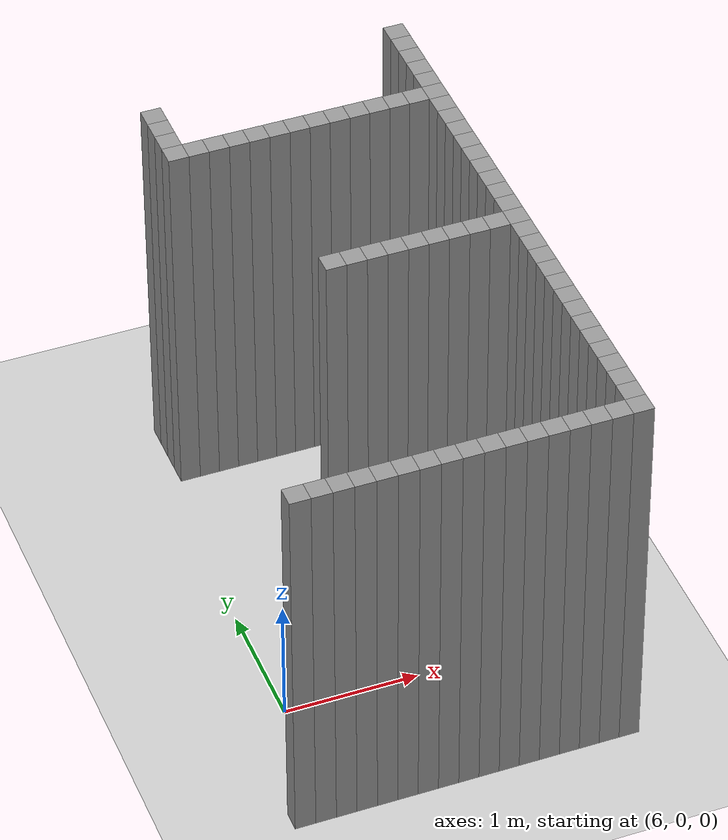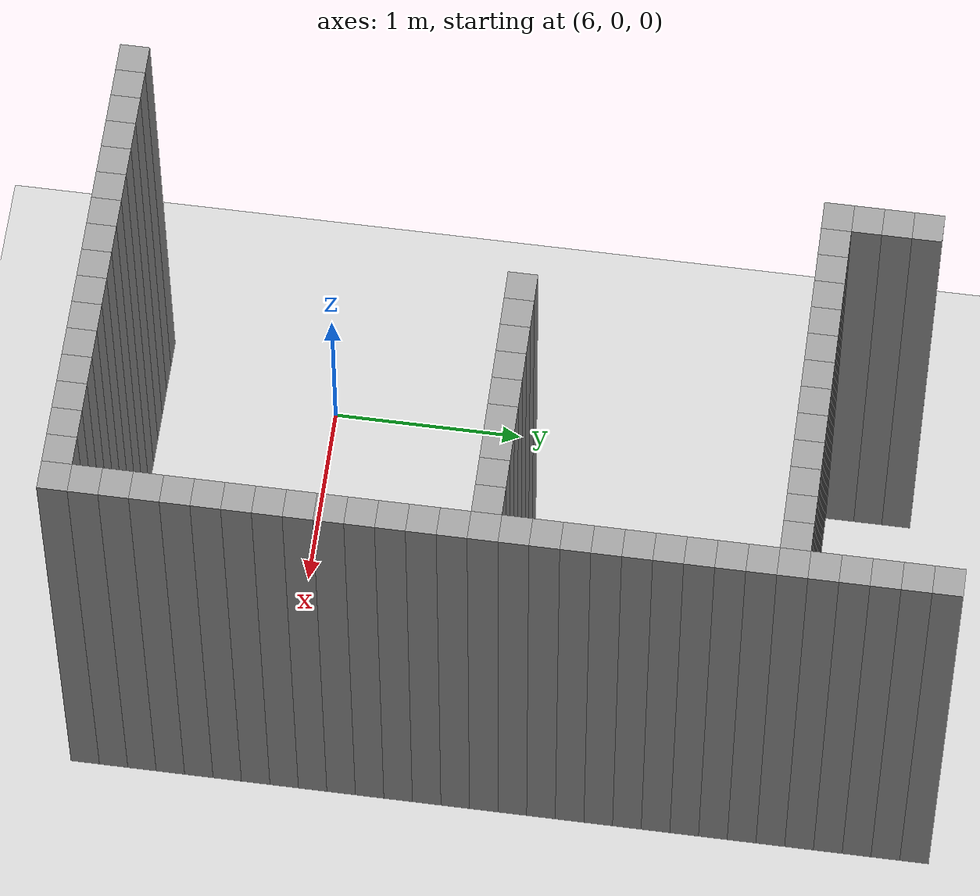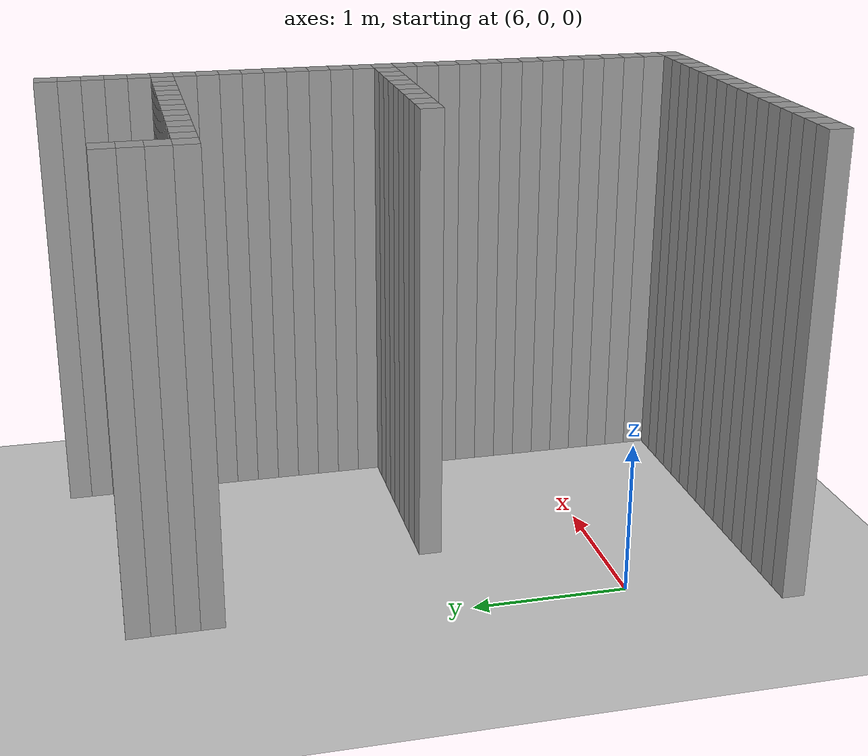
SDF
<sdf version="1.7">
 <world name="default">
  <model name="ground_plane">
   <static>1</static>
   <link name="link">
    <collision name="collision">
     <geometry><plane><normal>0 0 1</normal><size>100 100</size></plane></geometry>
     <surface>
      <contact><collide_bitmask>65535</collide_bitmask></contact>
      <friction><ode><mu>100</mu><mu2>50</mu2></ode></friction>
     </surface>
    </collision>
    <visual name="visual">
     <cast_shadows>0</cast_shadows>
     <geometry><plane><normal>0 0 1</normal><size>100 100</size></plane></geometry>
     <material>
      <script><uri>file://media/materials/scripts/gazebo.material</uri><name>Gazebo/Grey</name></script>
     </material>
    </visual>
   </link>
  </model>
  <model name="image45001">
   <pose>-1 -1 0 0 -0 0</pose>
   <link name="Wall_350">
    <collision name="Wall_350_Collision">
     <geometry><box><size>0.15 0.15 3</size></box></geometry>
     <pose>0 0 1.5 0 -0 0</pose>
    </collision>
    <visual name="Wall_350_Visual">
     <pose>0 0 1.5 0 -0 0</pose>
     <geometry><box><size>0.15 0.15 3</size></box></geometry>
     <material>
      <script><uri>file://media/materials/scripts/gazebo.material</uri><name>Gazebo/Grey</name></script>
      <ambient>1 1 1 1</ambient>
     </material>
     <meta><layer>0</layer></meta>
    </visual>
    <pose>6.75 0.0 0 0 -0 0</pose>
   </link>
   <link name="Wall_353">
    <collision name="Wall_353_Collision">
     <geometry><box><size>0.15 0.15 3</size></box></geometry>
     <pose>0 0 1.5 0 -0 0</pose>
    </collision>
    <visual name="Wall_353_Visual">
     <pose>0 0 1.5 0 -0 0</pose>
     <geometry><box><size>0.15 0.15 3</size></box></geometry>
     <material>
      <script><uri>file://media/materials/scripts/gazebo.material</uri><name>Gazebo/Grey</name></script>
      <ambient>1 1 1 1</ambient>
     </material>
     <meta><layer>0</layer></meta>
    </visual>
    <pose>6.8999999999999995 0.0 0 0 -0 0</pose>
   </link>
   <link name="Wall_365">
    <collision name="Wall_365_Collision">
     <geometry><box><size>0.15 0.15 3</size></box></geometry>
     <pose>0 0 1.5 0 -0 0</pose>
    </collision>
    <visual name="Wall_365_Visual">
     <pose>0 0 1.5 0 -0 0</pose>
     <geometry><box><size>0.15 0.15 3</size></box></geometry>
     <material>
      <script><uri>file://media/materials/scripts/gazebo.material</uri><name>Gazebo/Grey</name></script>
      <ambient>1 1 1 1</ambient>
     </material>
     <meta><layer>0</layer></meta>
    </visual>
    <pose>7.05 0.0 0 0 -0 0</pose>
   </link>
   <link name="Wall_368">
    <collision name="Wall_368_Collision">
     <geometry><box><size>0.15 0.15 3</size></box></geometry>
     <pose>0 0 1.5 0 -0 0</pose>
    </collision>
    <visual name="Wall_368_Visual">
     <pose>0 0 1.5 0 -0 0</pose>
     <geometry><box><size>0.15 0.15 3</size></box></geometry>
     <material>
      <script><uri>file://media/materials/scripts/gazebo.material</uri><name>Gazebo/Grey</name></script>
      <ambient>1 1 1 1</ambient>
     </material>
     <meta><layer>0</layer></meta>
    </visual>
    <pose>7.199999999999999 0.0 0 0 -0 0</pose>
   </link>
   <link name="Wall_369">
    <collision name="Wall_369_Collision">
     <geometry><box><size>0.15 0.15 3</size></box></geometry>
     <pose>0 0 1.5 0 -0 0</pose>
    </collision>
    <visual name="Wall_369_Visual">
     <pose>0 0 1.5 0 -0 0</pose>
     <geometry><box><size>0.15 0.15 3</size></box></geometry>
     <material>
      <script><uri>file://media/materials/scripts/gazebo.material</uri><name>Gazebo/Grey</name></script>
      <ambient>1 1 1 1</ambient>
     </material>
     <meta><layer>0</layer></meta>
    </visual>
    <pose>7.199999999999999 3.5999999999999996 0 0 -0 0</pose>
   </link>
   <link name="Wall_370">
    <collision name="Wall_370_Collision">
     <geometry><box><size>0.15 0.15 3</size></box></geometry>
     <pose>0 0 1.5 0 -0 0</pose>
    </collision>
    <visual name="Wall_370_Visual">
     <pose>0 0 1.5 0 -0 0</pose>
     <geometry><box><size>0.15 0.15 3</size></box></geometry>
     <material>
      <script><uri>file://media/materials/scripts/gazebo.material</uri><name>Gazebo/Grey</name></script>
      <ambient>1 1 1 1</ambient>
     </material>
     <meta><layer>0</layer></meta>
    </visual>
    <pose>7.199999999999999 3.75 0 0 -0 0</pose>
   </link>
   <link name="Wall_371">
    <collision name="Wall_371_Collision">
     <geometry><box><size>0.15 0.15 3</size></box></geometry>
     <pose>0 0 1.5 0 -0 0</pose>
    </collision>
    <visual name="Wall_371_Visual">
     <pose>0 0 1.5 0 -0 0</pose>
     <geometry><box><size>0.15 0.15 3</size></box></geometry>
     <material>
      <script><uri>file://media/materials/scripts/gazebo.material</uri><name>Gazebo/Grey</name></script>
      <ambient>1 1 1 1</ambient>
     </material>
     <meta><layer>0</layer></meta>
    </visual>
    <pose>7.199999999999999 3.9 0 0 -0 0</pose>
   </link>
   <link name="Wall_372">
    <collision name="Wall_372_Collision">
     <geometry><box><size>0.15 0.15 3</size></box></geometry>
     <pose>0 0 1.5 0 -0 0</pose>
    </collision>
    <visual name="Wall_372_Visual">
     <pose>0 0 1.5 0 -0 0</pose>
     <geometry><box><size>0.15 0.15 3</size></box></geometry>
     <material>
      <script><uri>file://media/materials/scripts/gazebo.material</uri><name>Gazebo/Grey</name></script>
      <ambient>1 1 1 1</ambient>
     </material>
     <meta><layer>0</layer></meta>
    </visual>
    <pose>7.199999999999999 4.05 0 0 -0 0</pose>
   </link>
   <link name="Wall_381">
    <collision name="Wall_381_Collision">
     <geometry><box><size>0.15 0.15 3</size></box></geometry>
     <pose>0 0 1.5 0 -0 0</pose>
    </collision>
    <visual name="Wall_381_Visual">
     <pose>0 0 1.5 0 -0 0</pose>
     <geometry><box><size>0.15 0.15 3</size></box></geometry>
     <material>
      <script><uri>file://media/materials/scripts/gazebo.material</uri><name>Gazebo/Grey</name></script>
      <ambient>1 1 1 1</ambient>
     </material>
     <meta><layer>0</layer></meta>
    </visual>
    <pose>7.35 0.0 0 0 -0 0</pose>
   </link>
   <link name="Wall_382">
    <collision name="Wall_382_Collision">
     <geometry><box><size>0.15 0.15 3</size></box></geometry>
     <pose>0 0 1.5 0 -0 0</pose>
    </collision>
    <visual name="Wall_382_Visual">
     <pose>0 0 1.5 0 -0 0</pose>
     <geometry><box><size>0.15 0.15 3</size></box></geometry>
     <material>
      <script><uri>file://media/materials/scripts/gazebo.material</uri><name>Gazebo/Grey</name></script>
      <ambient>1 1 1 1</ambient>
     </material>
     <meta><layer>0</layer></meta>
    </visual>
    <pose>7.35 3.5999999999999996 0 0 -0 0</pose>
   </link>
   <link name="Wall_385">
    <collision name="Wall_385_Collision">
     <geometry><box><size>0.15 0.15 3</size></box></geometry>
     <pose>0 0 1.5 0 -0 0</pose>
    </collision>
    <visual name="Wall_385_Visual">
     <pose>0 0 1.5 0 -0 0</pose>
     <geometry><box><size>0.15 0.15 3</size></box></geometry>
     <material>
      <script><uri>file://media/materials/scripts/gazebo.material</uri><name>Gazebo/Grey</name></script>
      <ambient>1 1 1 1</ambient>
     </material>
     <meta><layer>0</layer></meta>
    </visual>
    <pose>7.5 0.0 0 0 -0 0</pose>
   </link>
   <link name="Wall_386">
    <collision name="Wall_386_Collision">
     <geometry><box><size>0.15 0.15 3</size></box></geometry>
     <pose>0 0 1.5 0 -0 0</pose>
    </collision>
    <visual name="Wall_386_Visual">
     <pose>0 0 1.5 0 -0 0</pose>
     <geometry><box><size>0.15 0.15 3</size></box></geometry>
     <material>
      <script><uri>file://media/materials/scripts/gazebo.material</uri><name>Gazebo/Grey</name></script>
      <ambient>1 1 1 1</ambient>
     </material>
     <meta><layer>0</layer></meta>
    </visual>
    <pose>7.5 3.5999999999999996 0 0 -0 0</pose>
   </link>
   <link name="Wall_389">
    <collision name="Wall_389_Collision">
     <geometry><box><size>0.15 0.15 3</size></box></geometry>
     <pose>0 0 1.5 0 -0 0</pose>
    </collision>
    <visual name="Wall_389_Visual">
     <pose>0 0 1.5 0 -0 0</pose>
     <geometry><box><size>0.15 0.15 3</size></box></geometry>
     <material>
      <script><uri>file://media/materials/scripts/gazebo.material</uri><name>Gazebo/Grey</name></script>
      <ambient>1 1 1 1</ambient>
     </material>
     <meta><layer>0</layer></meta>
    </visual>
    <pose>7.6499999999999995 0.0 0 0 -0 0</pose>
   </link>
   <link name="Wall_390">
    <collision name="Wall_390_Collision">
     <geometry><box><size>0.15 0.15 3</size></box></geometry>
     <pose>0 0 1.5 0 -0 0</pose>
    </collision>
    <visual name="Wall_390_Visual">
     <pose>0 0 1.5 0 -0 0</pose>
     <geometry><box><size>0.15 0.15 3</size></box></geometry>
     <material>
      <script><uri>file://media/materials/scripts/gazebo.material</uri><name>Gazebo/Grey</name></script>
      <ambient>1 1 1 1</ambient>
     </material>
     <meta><layer>0</layer></meta>
    </visual>
    <pose>7.6499999999999995 3.5999999999999996 0 0 -0 0</pose>
   </link>
   <link name="Wall_393">
    <collision name="Wall_393_Collision">
     <geometry><box><size>0.15 0.15 3</size></box></geometry>
     <pose>0 0 1.5 0 -0 0</pose>
    </collision>
    <visual name="Wall_393_Visual">
     <pose>0 0 1.5 0 -0 0</pose>
     <geometry><box><size>0.15 0.15 3</size></box></geometry>
     <material>
      <script><uri>file://media/materials/scripts/gazebo.material</uri><name>Gazebo/Grey</name></script>
      <ambient>1 1 1 1</ambient>
     </material>
     <meta><layer>0</layer></meta>
    </visual>
    <pose>7.8 0.0 0 0 -0 0</pose>
   </link>
   <link name="Wall_394">
    <collision name="Wall_394_Collision">
     <geometry><box><size>0.15 0.15 3</size></box></geometry>
     <pose>0 0 1.5 0 -0 0</pose>
    </collision>
    <visual name="Wall_394_Visual">
     <pose>0 0 1.5 0 -0 0</pose>
     <geometry><box><size>0.15 0.15 3</size></box></geometry>
     <material>
      <script><uri>file://media/materials/scripts/gazebo.material</uri><name>Gazebo/Grey</name></script>
      <ambient>1 1 1 1</ambient>
     </material>
     <meta><layer>0</layer></meta>
    </visual>
    <pose>7.8 2.1 0 0 -0 0</pose>
   </link>
   <link name="Wall_395">
    <collision name="Wall_395_Collision">
     <geometry><box><size>0.15 0.15 3</size></box></geometry>
     <pose>0 0 1.5 0 -0 0</pose>
    </collision>
    <visual name="Wall_395_Visual">
     <pose>0 0 1.5 0 -0 0</pose>
     <geometry><box><size>0.15 0.15 3</size></box></geometry>
     <material>
      <script><uri>file://media/materials/scripts/gazebo.material</uri><name>Gazebo/Grey</name></script>
      <ambient>1 1 1 1</ambient>
     </material>
     <meta><layer>0</layer></meta>
    </visual>
    <pose>7.8 3.5999999999999996 0 0 -0 0</pose>
   </link>
   <link name="Wall_398">
    <collision name="Wall_398_Collision">
     <geometry><box><size>0.15 0.15 3</size></box></geometry>
     <pose>0 0 1.5 0 -0 0</pose>
    </collision>
    <visual name="Wall_398_Visual">
     <pose>0 0 1.5 0 -0 0</pose>
     <geometry><box><size>0.15 0.15 3</size></box></geometry>
     <material>
      <script><uri>file://media/materials/scripts/gazebo.material</uri><name>Gazebo/Grey</name></script>
      <ambient>1 1 1 1</ambient>
     </material>
     <meta><layer>0</layer></meta>
    </visual>
    <pose>7.949999999999999 0.0 0 0 -0 0</pose>
   </link>
   <link name="Wall_399">
    <collision name="Wall_399_Collision">
     <geometry><box><size>0.15 0.15 3</size></box></geometry>
     <pose>0 0 1.5 0 -0 0</pose>
    </collision>
    <visual name="Wall_399_Visual">
     <pose>0 0 1.5 0 -0 0</pose>
     <geometry><box><size>0.15 0.15 3</size></box></geometry>
     <material>
      <script><uri>file://media/materials/scripts/gazebo.material</uri><name>Gazebo/Grey</name></script>
      <ambient>1 1 1 1</ambient>
     </material>
     <meta><layer>0</layer></meta>
    </visual>
    <pose>7.949999999999999 2.1 0 0 -0 0</pose>
   </link>
   <link name="Wall_400">
    <collision name="Wall_400_Collision">
     <geometry><box><size>0.15 0.15 3</size></box></geometry>
     <pose>0 0 1.5 0 -0 0</pose>
    </collision>
    <visual name="Wall_400_Visual">
     <pose>0 0 1.5 0 -0 0</pose>
     <geometry><box><size>0.15 0.15 3</size></box></geometry>
     <material>
      <script><uri>file://media/materials/scripts/gazebo.material</uri><name>Gazebo/Grey</name></script>
      <ambient>1 1 1 1</ambient>
     </material>
     <meta><layer>0</layer></meta>
    </visual>
    <pose>7.949999999999999 3.5999999999999996 0 0 -0 0</pose>
   </link>
   <link name="Wall_403">
    <collision name="Wall_403_Collision">
     <geometry><box><size>0.15 0.15 3</size></box></geometry>
     <pose>0 0 1.5 0 -0 0</pose>
    </collision>
    <visual name="Wall_403_Visual">
     <pose>0 0 1.5 0 -0 0</pose>
     <geometry><box><size>0.15 0.15 3</size></box></geometry>
     <material>
      <script><uri>file://media/materials/scripts/gazebo.material</uri><name>Gazebo/Grey</name></script>
      <ambient>1 1 1 1</ambient>
     </material>
     <meta><layer>0</layer></meta>
    </visual>
    <pose>8.1 0.0 0 0 -0 0</pose>
   </link>
   <link name="Wall_404">
    <collision name="Wall_404_Collision">
     <geometry><box><size>0.15 0.15 3</size></box></geometry>
     <pose>0 0 1.5 0 -0 0</pose>
    </collision>
    <visual name="Wall_404_Visual">
     <pose>0 0 1.5 0 -0 0</pose>
     <geometry><box><size>0.15 0.15 3</size></box></geometry>
     <material>
      <script><uri>file://media/materials/scripts/gazebo.material</uri><name>Gazebo/Grey</name></script>
      <ambient>1 1 1 1</ambient>
     </material>
     <meta><layer>0</layer></meta>
    </visual>
    <pose>8.1 2.1 0 0 -0 0</pose>
   </link>
   <link name="Wall_405">
    <collision name="Wall_405_Collision">
     <geometry><box><size>0.15 0.15 3</size></box></geometry>
     <pose>0 0 1.5 0 -0 0</pose>
    </collision>
    <visual name="Wall_405_Visual">
     <pose>0 0 1.5 0 -0 0</pose>
     <geometry><box><size>0.15 0.15 3</size></box></geometry>
     <material>
      <script><uri>file://media/materials/scripts/gazebo.material</uri><name>Gazebo/Grey</name></script>
      <ambient>1 1 1 1</ambient>
     </material>
     <meta><layer>0</layer></meta>
    </visual>
    <pose>8.1 3.5999999999999996 0 0 -0 0</pose>
   </link>
   <link name="Wall_408">
    <collision name="Wall_408_Collision">
     <geometry><box><size>0.15 0.15 3</size></box></geometry>
     <pose>0 0 1.5 0 -0 0</pose>
    </collision>
    <visual name="Wall_408_Visual">
     <pose>0 0 1.5 0 -0 0</pose>
     <geometry><box><size>0.15 0.15 3</size></box></geometry>
     <material>
      <script><uri>file://media/materials/scripts/gazebo.material</uri><name>Gazebo/Grey</name></script>
      <ambient>1 1 1 1</ambient>
     </material>
     <meta><layer>0</layer></meta>
    </visual>
    <pose>8.25 0.0 0 0 -0 0</pose>
   </link>
   <link name="Wall_409">
    <collision name="Wall_409_Collision">
     <geometry><box><size>0.15 0.15 3</size></box></geometry>
     <pose>0 0 1.5 0 -0 0</pose>
    </collision>
    <visual name="Wall_409_Visual">
     <pose>0 0 1.5 0 -0 0</pose>
     <geometry><box><size>0.15 0.15 3</size></box></geometry>
     <material>
      <script><uri>file://media/materials/scripts/gazebo.material</uri><name>Gazebo/Grey</name></script>
      <ambient>1 1 1 1</ambient>
     </material>
     <meta><layer>0</layer></meta>
    </visual>
    <pose>8.25 2.1 0 0 -0 0</pose>
   </link>
   <link name="Wall_410">
    <collision name="Wall_410_Collision">
     <geometry><box><size>0.15 0.15 3</size></box></geometry>
     <pose>0 0 1.5 0 -0 0</pose>
    </collision>
    <visual name="Wall_410_Visual">
     <pose>0 0 1.5 0 -0 0</pose>
     <geometry><box><size>0.15 0.15 3</size></box></geometry>
     <material>
      <script><uri>file://media/materials/scripts/gazebo.material</uri><name>Gazebo/Grey</name></script>
      <ambient>1 1 1 1</ambient>
     </material>
     <meta><layer>0</layer></meta>
    </visual>
    <pose>8.25 3.5999999999999996 0 0 -0 0</pose>
   </link>
   <link name="Wall_413">
    <collision name="Wall_413_Collision">
     <geometry><box><size>0.15 0.15 3</size></box></geometry>
     <pose>0 0 1.5 0 -0 0</pose>
    </collision>
    <visual name="Wall_413_Visual">
     <pose>0 0 1.5 0 -0 0</pose>
     <geometry><box><size>0.15 0.15 3</size></box></geometry>
     <material>
      <script><uri>file://media/materials/scripts/gazebo.material</uri><name>Gazebo/Grey</name></script>
      <ambient>1 1 1 1</ambient>
     </material>
     <meta><layer>0</layer></meta>
    </visual>
    <pose>8.4 0.0 0 0 -0 0</pose>
   </link>
   <link name="Wall_414">
    <collision name="Wall_414_Collision">
     <geometry><box><size>0.15 0.15 3</size></box></geometry>
     <pose>0 0 1.5 0 -0 0</pose>
    </collision>
    <visual name="Wall_414_Visual">
     <pose>0 0 1.5 0 -0 0</pose>
     <geometry><box><size>0.15 0.15 3</size></box></geometry>
     <material>
      <script><uri>file://media/materials/scripts/gazebo.material</uri><name>Gazebo/Grey</name></script>
      <ambient>1 1 1 1</ambient>
     </material>
     <meta><layer>0</layer></meta>
    </visual>
    <pose>8.4 2.1 0 0 -0 0</pose>
   </link>
   <link name="Wall_415">
    <collision name="Wall_415_Collision">
     <geometry><box><size>0.15 0.15 3</size></box></geometry>
     <pose>0 0 1.5 0 -0 0</pose>
    </collision>
    <visual name="Wall_415_Visual">
     <pose>0 0 1.5 0 -0 0</pose>
     <geometry><box><size>0.15 0.15 3</size></box></geometry>
     <material>
      <script><uri>file://media/materials/scripts/gazebo.material</uri><name>Gazebo/Grey</name></script>
      <ambient>1 1 1 1</ambient>
     </material>
     <meta><layer>0</layer></meta>
    </visual>
    <pose>8.4 3.5999999999999996 0 0 -0 0</pose>
   </link>
   <link name="Wall_418">
    <collision name="Wall_418_Collision">
     <geometry><box><size>0.15 0.15 3</size></box></geometry>
     <pose>0 0 1.5 0 -0 0</pose>
    </collision>
    <visual name="Wall_418_Visual">
     <pose>0 0 1.5 0 -0 0</pose>
     <geometry><box><size>0.15 0.15 3</size></box></geometry>
     <material>
      <script><uri>file://media/materials/scripts/gazebo.material</uri><name>Gazebo/Grey</name></script>
      <ambient>1 1 1 1</ambient>
     </material>
     <meta><layer>0</layer></meta>
    </visual>
    <pose>8.549999999999999 0.0 0 0 -0 0</pose>
   </link>
   <link name="Wall_419">
    <collision name="Wall_419_Collision">
     <geometry><box><size>0.15 0.15 3</size></box></geometry>
     <pose>0 0 1.5 0 -0 0</pose>
    </collision>
    <visual name="Wall_419_Visual">
     <pose>0 0 1.5 0 -0 0</pose>
     <geometry><box><size>0.15 0.15 3</size></box></geometry>
     <material>
      <script><uri>file://media/materials/scripts/gazebo.material</uri><name>Gazebo/Grey</name></script>
      <ambient>1 1 1 1</ambient>
     </material>
     <meta><layer>0</layer></meta>
    </visual>
    <pose>8.549999999999999 2.1 0 0 -0 0</pose>
   </link>
   <link name="Wall_420">
    <collision name="Wall_420_Collision">
     <geometry><box><size>0.15 0.15 3</size></box></geometry>
     <pose>0 0 1.5 0 -0 0</pose>
    </collision>
    <visual name="Wall_420_Visual">
     <pose>0 0 1.5 0 -0 0</pose>
     <geometry><box><size>0.15 0.15 3</size></box></geometry>
     <material>
      <script><uri>file://media/materials/scripts/gazebo.material</uri><name>Gazebo/Grey</name></script>
      <ambient>1 1 1 1</ambient>
     </material>
     <meta><layer>0</layer></meta>
    </visual>
    <pose>8.549999999999999 3.5999999999999996 0 0 -0 0</pose>
   </link>
   <link name="Wall_424">
    <collision name="Wall_424_Collision">
     <geometry><box><size>0.15 0.15 3</size></box></geometry>
     <pose>0 0 1.5 0 -0 0</pose>
    </collision>
    <visual name="Wall_424_Visual">
     <pose>0 0 1.5 0 -0 0</pose>
     <geometry><box><size>0.15 0.15 3</size></box></geometry>
     <material>
      <script><uri>file://media/materials/scripts/gazebo.material</uri><name>Gazebo/Grey</name></script>
      <ambient>1 1 1 1</ambient>
     </material>
     <meta><layer>0</layer></meta>
    </visual>
    <pose>8.7 0.0 0 0 -0 0</pose>
   </link>
   <link name="Wall_425">
    <collision name="Wall_425_Collision">
     <geometry><box><size>0.15 0.15 3</size></box></geometry>
     <pose>0 0 1.5 0 -0 0</pose>
    </collision>
    <visual name="Wall_425_Visual">
     <pose>0 0 1.5 0 -0 0</pose>
     <geometry><box><size>0.15 0.15 3</size></box></geometry>
     <material>
      <script><uri>file://media/materials/scripts/gazebo.material</uri><name>Gazebo/Grey</name></script>
      <ambient>1 1 1 1</ambient>
     </material>
     <meta><layer>0</layer></meta>
    </visual>
    <pose>8.7 2.1 0 0 -0 0</pose>
   </link>
   <link name="Wall_426">
    <collision name="Wall_426_Collision">
     <geometry><box><size>0.15 0.15 3</size></box></geometry>
     <pose>0 0 1.5 0 -0 0</pose>
    </collision>
    <visual name="Wall_426_Visual">
     <pose>0 0 1.5 0 -0 0</pose>
     <geometry><box><size>0.15 0.15 3</size></box></geometry>
     <material>
      <script><uri>file://media/materials/scripts/gazebo.material</uri><name>Gazebo/Grey</name></script>
      <ambient>1 1 1 1</ambient>
     </material>
     <meta><layer>0</layer></meta>
    </visual>
    <pose>8.7 3.5999999999999996 0 0 -0 0</pose>
   </link>
   <link name="Wall_430">
    <collision name="Wall_430_Collision">
     <geometry><box><size>0.15 0.15 3</size></box></geometry>
     <pose>0 0 1.5 0 -0 0</pose>
    </collision>
    <visual name="Wall_430_Visual">
     <pose>0 0 1.5 0 -0 0</pose>
     <geometry><box><size>0.15 0.15 3</size></box></geometry>
     <material>
      <script><uri>file://media/materials/scripts/gazebo.material</uri><name>Gazebo/Grey</name></script>
      <ambient>1 1 1 1</ambient>
     </material>
     <meta><layer>0</layer></meta>
    </visual>
    <pose>8.85 0.0 0 0 -0 0</pose>
   </link>
   <link name="Wall_431">
    <collision name="Wall_431_Collision">
     <geometry><box><size>0.15 0.15 3</size></box></geometry>
     <pose>0 0 1.5 0 -0 0</pose>
    </collision>
    <visual name="Wall_431_Visual">
     <pose>0 0 1.5 0 -0 0</pose>
     <geometry><box><size>0.15 0.15 3</size></box></geometry>
     <material>
      <script><uri>file://media/materials/scripts/gazebo.material</uri><name>Gazebo/Grey</name></script>
      <ambient>1 1 1 1</ambient>
     </material>
     <meta><layer>0</layer></meta>
    </visual>
    <pose>8.85 2.1 0 0 -0 0</pose>
   </link>
   <link name="Wall_432">
    <collision name="Wall_432_Collision">
     <geometry><box><size>0.15 0.15 3</size></box></geometry>
     <pose>0 0 1.5 0 -0 0</pose>
    </collision>
    <visual name="Wall_432_Visual">
     <pose>0 0 1.5 0 -0 0</pose>
     <geometry><box><size>0.15 0.15 3</size></box></geometry>
     <material>
      <script><uri>file://media/materials/scripts/gazebo.material</uri><name>Gazebo/Grey</name></script>
      <ambient>1 1 1 1</ambient>
     </material>
     <meta><layer>0</layer></meta>
    </visual>
    <pose>8.85 3.5999999999999996 0 0 -0 0</pose>
   </link>
   <link name="Wall_436">
    <collision name="Wall_436_Collision">
     <geometry><box><size>0.15 0.15 3</size></box></geometry>
     <pose>0 0 1.5 0 -0 0</pose>
    </collision>
    <visual name="Wall_436_Visual">
     <pose>0 0 1.5 0 -0 0</pose>
     <geometry><box><size>0.15 0.15 3</size></box></geometry>
     <material>
      <script><uri>file://media/materials/scripts/gazebo.material</uri><name>Gazebo/Grey</name></script>
      <ambient>1 1 1 1</ambient>
     </material>
     <meta><layer>0</layer></meta>
    </visual>
    <pose>9.0 0.0 0 0 -0 0</pose>
   </link>
   <link name="Wall_437">
    <collision name="Wall_437_Collision">
     <geometry><box><size>0.15 0.15 3</size></box></geometry>
     <pose>0 0 1.5 0 -0 0</pose>
    </collision>
    <visual name="Wall_437_Visual">
     <pose>0 0 1.5 0 -0 0</pose>
     <geometry><box><size>0.15 0.15 3</size></box></geometry>
     <material>
      <script><uri>file://media/materials/scripts/gazebo.material</uri><name>Gazebo/Grey</name></script>
      <ambient>1 1 1 1</ambient>
     </material>
     <meta><layer>0</layer></meta>
    </visual>
    <pose>9.0 2.1 0 0 -0 0</pose>
   </link>
   <link name="Wall_438">
    <collision name="Wall_438_Collision">
     <geometry><box><size>0.15 0.15 3</size></box></geometry>
     <pose>0 0 1.5 0 -0 0</pose>
    </collision>
    <visual name="Wall_438_Visual">
     <pose>0 0 1.5 0 -0 0</pose>
     <geometry><box><size>0.15 0.15 3</size></box></geometry>
     <material>
      <script><uri>file://media/materials/scripts/gazebo.material</uri><name>Gazebo/Grey</name></script>
      <ambient>1 1 1 1</ambient>
     </material>
     <meta><layer>0</layer></meta>
    </visual>
    <pose>9.0 3.5999999999999996 0 0 -0 0</pose>
   </link>
   <link name="Wall_442">
    <collision name="Wall_442_Collision">
     <geometry><box><size>0.15 0.15 3</size></box></geometry>
     <pose>0 0 1.5 0 -0 0</pose>
    </collision>
    <visual name="Wall_442_Visual">
     <pose>0 0 1.5 0 -0 0</pose>
     <geometry><box><size>0.15 0.15 3</size></box></geometry>
     <material>
      <script><uri>file://media/materials/scripts/gazebo.material</uri><name>Gazebo/Grey</name></script>
      <ambient>1 1 1 1</ambient>
     </material>
     <meta><layer>0</layer></meta>
    </visual>
    <pose>9.15 0.0 0 0 -0 0</pose>
   </link>
   <link name="Wall_443">
    <collision name="Wall_443_Collision">
     <geometry><box><size>0.15 0.15 3</size></box></geometry>
     <pose>0 0 1.5 0 -0 0</pose>
    </collision>
    <visual name="Wall_443_Visual">
     <pose>0 0 1.5 0 -0 0</pose>
     <geometry><box><size>0.15 0.15 3</size></box></geometry>
     <material>
      <script><uri>file://media/materials/scripts/gazebo.material</uri><name>Gazebo/Grey</name></script>
      <ambient>1 1 1 1</ambient>
     </material>
     <meta><layer>0</layer></meta>
    </visual>
    <pose>9.15 0.15 0 0 -0 0</pose>
   </link>
   <link name="Wall_444">
    <collision name="Wall_444_Collision">
     <geometry><box><size>0.15 0.15 3</size></box></geometry>
     <pose>0 0 1.5 0 -0 0</pose>
    </collision>
    <visual name="Wall_444_Visual">
     <pose>0 0 1.5 0 -0 0</pose>
     <geometry><box><size>0.15 0.15 3</size></box></geometry>
     <material>
      <script><uri>file://media/materials/scripts/gazebo.material</uri><name>Gazebo/Grey</name></script>
      <ambient>1 1 1 1</ambient>
     </material>
     <meta><layer>0</layer></meta>
    </visual>
    <pose>9.15 0.3 0 0 -0 0</pose>
   </link>
   <link name="Wall_445">
    <collision name="Wall_445_Collision">
     <geometry><box><size>0.15 0.15 3</size></box></geometry>
     <pose>0 0 1.5 0 -0 0</pose>
    </collision>
    <visual name="Wall_445_Visual">
     <pose>0 0 1.5 0 -0 0</pose>
     <geometry><box><size>0.15 0.15 3</size></box></geometry>
     <material>
      <script><uri>file://media/materials/scripts/gazebo.material</uri><name>Gazebo/Grey</name></script>
      <ambient>1 1 1 1</ambient>
     </material>
     <meta><layer>0</layer></meta>
    </visual>
    <pose>9.15 0.44999999999999996 0 0 -0 0</pose>
   </link>
   <link name="Wall_446">
    <collision name="Wall_446_Collision">
     <geometry><box><size>0.15 0.15 3</size></box></geometry>
     <pose>0 0 1.5 0 -0 0</pose>
    </collision>
    <visual name="Wall_446_Visual">
     <pose>0 0 1.5 0 -0 0</pose>
     <geometry><box><size>0.15 0.15 3</size></box></geometry>
     <material>
      <script><uri>file://media/materials/scripts/gazebo.material</uri><name>Gazebo/Grey</name></script>
      <ambient>1 1 1 1</ambient>
     </material>
     <meta><layer>0</layer></meta>
    </visual>
    <pose>9.15 0.6 0 0 -0 0</pose>
   </link>
   <link name="Wall_447">
    <collision name="Wall_447_Collision">
     <geometry><box><size>0.15 0.15 3</size></box></geometry>
     <pose>0 0 1.5 0 -0 0</pose>
    </collision>
    <visual name="Wall_447_Visual">
     <pose>0 0 1.5 0 -0 0</pose>
     <geometry><box><size>0.15 0.15 3</size></box></geometry>
     <material>
      <script><uri>file://media/materials/scripts/gazebo.material</uri><name>Gazebo/Grey</name></script>
      <ambient>1 1 1 1</ambient>
     </material>
     <meta><layer>0</layer></meta>
    </visual>
    <pose>9.15 0.75 0 0 -0 0</pose>
   </link>
   <link name="Wall_448">
    <collision name="Wall_448_Collision">
     <geometry><box><size>0.15 0.15 3</size></box></geometry>
     <pose>0 0 1.5 0 -0 0</pose>
    </collision>
    <visual name="Wall_448_Visual">
     <pose>0 0 1.5 0 -0 0</pose>
     <geometry><box><size>0.15 0.15 3</size></box></geometry>
     <material>
      <script><uri>file://media/materials/scripts/gazebo.material</uri><name>Gazebo/Grey</name></script>
      <ambient>1 1 1 1</ambient>
     </material>
     <meta><layer>0</layer></meta>
    </visual>
    <pose>9.15 0.8999999999999999 0 0 -0 0</pose>
   </link>
   <link name="Wall_449">
    <collision name="Wall_449_Collision">
     <geometry><box><size>0.15 0.15 3</size></box></geometry>
     <pose>0 0 1.5 0 -0 0</pose>
    </collision>
    <visual name="Wall_449_Visual">
     <pose>0 0 1.5 0 -0 0</pose>
     <geometry><box><size>0.15 0.15 3</size></box></geometry>
     <material>
      <script><uri>file://media/materials/scripts/gazebo.material</uri><name>Gazebo/Grey</name></script>
      <ambient>1 1 1 1</ambient>
     </material>
     <meta><layer>0</layer></meta>
    </visual>
    <pose>9.15 1.05 0 0 -0 0</pose>
   </link>
   <link name="Wall_450">
    <collision name="Wall_450_Collision">
     <geometry><box><size>0.15 0.15 3</size></box></geometry>
     <pose>0 0 1.5 0 -0 0</pose>
    </collision>
    <visual name="Wall_450_Visual">
     <pose>0 0 1.5 0 -0 0</pose>
     <geometry><box><size>0.15 0.15 3</size></box></geometry>
     <material>
      <script><uri>file://media/materials/scripts/gazebo.material</uri><name>Gazebo/Grey</name></script>
      <ambient>1 1 1 1</ambient>
     </material>
     <meta><layer>0</layer></meta>
    </visual>
    <pose>9.15 1.2 0 0 -0 0</pose>
   </link>
   <link name="Wall_451">
    <collision name="Wall_451_Collision">
     <geometry><box><size>0.15 0.15 3</size></box></geometry>
     <pose>0 0 1.5 0 -0 0</pose>
    </collision>
    <visual name="Wall_451_Visual">
     <pose>0 0 1.5 0 -0 0</pose>
     <geometry><box><size>0.15 0.15 3</size></box></geometry>
     <material>
      <script><uri>file://media/materials/scripts/gazebo.material</uri><name>Gazebo/Grey</name></script>
      <ambient>1 1 1 1</ambient>
     </material>
     <meta><layer>0</layer></meta>
    </visual>
    <pose>9.15 1.3499999999999999 0 0 -0 0</pose>
   </link>
   <link name="Wall_452">
    <collision name="Wall_452_Collision">
     <geometry><box><size>0.15 0.15 3</size></box></geometry>
     <pose>0 0 1.5 0 -0 0</pose>
    </collision>
    <visual name="Wall_452_Visual">
     <pose>0 0 1.5 0 -0 0</pose>
     <geometry><box><size>0.15 0.15 3</size></box></geometry>
     <material>
      <script><uri>file://media/materials/scripts/gazebo.material</uri><name>Gazebo/Grey</name></script>
      <ambient>1 1 1 1</ambient>
     </material>
     <meta><layer>0</layer></meta>
    </visual>
    <pose>9.15 1.5 0 0 -0 0</pose>
   </link>
   <link name="Wall_453">
    <collision name="Wall_453_Collision">
     <geometry><box><size>0.15 0.15 3</size></box></geometry>
     <pose>0 0 1.5 0 -0 0</pose>
    </collision>
    <visual name="Wall_453_Visual">
     <pose>0 0 1.5 0 -0 0</pose>
     <geometry><box><size>0.15 0.15 3</size></box></geometry>
     <material>
      <script><uri>file://media/materials/scripts/gazebo.material</uri><name>Gazebo/Grey</name></script>
      <ambient>1 1 1 1</ambient>
     </material>
     <meta><layer>0</layer></meta>
    </visual>
    <pose>9.15 1.65 0 0 -0 0</pose>
   </link>
   <link name="Wall_454">
    <collision name="Wall_454_Collision">
     <geometry><box><size>0.15 0.15 3</size></box></geometry>
     <pose>0 0 1.5 0 -0 0</pose>
    </collision>
    <visual name="Wall_454_Visual">
     <pose>0 0 1.5 0 -0 0</pose>
     <geometry><box><size>0.15 0.15 3</size></box></geometry>
     <material>
      <script><uri>file://media/materials/scripts/gazebo.material</uri><name>Gazebo/Grey</name></script>
      <ambient>1 1 1 1</ambient>
     </material>
     <meta><layer>0</layer></meta>
    </visual>
    <pose>9.15 1.7999999999999998 0 0 -0 0</pose>
   </link>
   <link name="Wall_455">
    <collision name="Wall_455_Collision">
     <geometry><box><size>0.15 0.15 3</size></box></geometry>
     <pose>0 0 1.5 0 -0 0</pose>
    </collision>
    <visual name="Wall_455_Visual">
     <pose>0 0 1.5 0 -0 0</pose>
     <geometry><box><size>0.15 0.15 3</size></box></geometry>
     <material>
      <script><uri>file://media/materials/scripts/gazebo.material</uri><name>Gazebo/Grey</name></script>
      <ambient>1 1 1 1</ambient>
     </material>
     <meta><layer>0</layer></meta>
    </visual>
    <pose>9.15 1.95 0 0 -0 0</pose>
   </link>
   <link name="Wall_456">
    <collision name="Wall_456_Collision">
     <geometry><box><size>0.15 0.15 3</size></box></geometry>
     <pose>0 0 1.5 0 -0 0</pose>
    </collision>
    <visual name="Wall_456_Visual">
     <pose>0 0 1.5 0 -0 0</pose>
     <geometry><box><size>0.15 0.15 3</size></box></geometry>
     <material>
      <script><uri>file://media/materials/scripts/gazebo.material</uri><name>Gazebo/Grey</name></script>
      <ambient>1 1 1 1</ambient>
     </material>
     <meta><layer>0</layer></meta>
    </visual>
    <pose>9.15 2.1 0 0 -0 0</pose>
   </link>
   <link name="Wall_457">
    <collision name="Wall_457_Collision">
     <geometry><box><size>0.15 0.15 3</size></box></geometry>
     <pose>0 0 1.5 0 -0 0</pose>
    </collision>
    <visual name="Wall_457_Visual">
     <pose>0 0 1.5 0 -0 0</pose>
     <geometry><box><size>0.15 0.15 3</size></box></geometry>
     <material>
      <script><uri>file://media/materials/scripts/gazebo.material</uri><name>Gazebo/Grey</name></script>
      <ambient>1 1 1 1</ambient>
     </material>
     <meta><layer>0</layer></meta>
    </visual>
    <pose>9.15 2.25 0 0 -0 0</pose>
   </link>
   <link name="Wall_458">
    <collision name="Wall_458_Collision">
     <geometry><box><size>0.15 0.15 3</size></box></geometry>
     <pose>0 0 1.5 0 -0 0</pose>
    </collision>
    <visual name="Wall_458_Visual">
     <pose>0 0 1.5 0 -0 0</pose>
     <geometry><box><size>0.15 0.15 3</size></box></geometry>
     <material>
      <script><uri>file://media/materials/scripts/gazebo.material</uri><name>Gazebo/Grey</name></script>
      <ambient>1 1 1 1</ambient>
     </material>
     <meta><layer>0</layer></meta>
    </visual>
    <pose>9.15 2.4 0 0 -0 0</pose>
   </link>
   <link name="Wall_459">
    <collision name="Wall_459_Collision">
     <geometry><box><size>0.15 0.15 3</size></box></geometry>
     <pose>0 0 1.5 0 -0 0</pose>
    </collision>
    <visual name="Wall_459_Visual">
     <pose>0 0 1.5 0 -0 0</pose>
     <geometry><box><size>0.15 0.15 3</size></box></geometry>
     <material>
      <script><uri>file://media/materials/scripts/gazebo.material</uri><name>Gazebo/Grey</name></script>
      <ambient>1 1 1 1</ambient>
     </material>
     <meta><layer>0</layer></meta>
    </visual>
    <pose>9.15 2.55 0 0 -0 0</pose>
   </link>
   <link name="Wall_460">
    <collision name="Wall_460_Collision">
     <geometry><box><size>0.15 0.15 3</size></box></geometry>
     <pose>0 0 1.5 0 -0 0</pose>
    </collision>
    <visual name="Wall_460_Visual">
     <pose>0 0 1.5 0 -0 0</pose>
     <geometry><box><size>0.15 0.15 3</size></box></geometry>
     <material>
      <script><uri>file://media/materials/scripts/gazebo.material</uri><name>Gazebo/Grey</name></script>
      <ambient>1 1 1 1</ambient>
     </material>
     <meta><layer>0</layer></meta>
    </visual>
    <pose>9.15 2.6999999999999997 0 0 -0 0</pose>
   </link>
   <link name="Wall_461">
    <collision name="Wall_461_Collision">
     <geometry><box><size>0.15 0.15 3</size></box></geometry>
     <pose>0 0 1.5 0 -0 0</pose>
    </collision>
    <visual name="Wall_461_Visual">
     <pose>0 0 1.5 0 -0 0</pose>
     <geometry><box><size>0.15 0.15 3</size></box></geometry>
     <material>
      <script><uri>file://media/materials/scripts/gazebo.material</uri><name>Gazebo/Grey</name></script>
      <ambient>1 1 1 1</ambient>
     </material>
     <meta><layer>0</layer></meta>
    </visual>
    <pose>9.15 2.85 0 0 -0 0</pose>
   </link>
   <link name="Wall_462">
    <collision name="Wall_462_Collision">
     <geometry><box><size>0.15 0.15 3</size></box></geometry>
     <pose>0 0 1.5 0 -0 0</pose>
    </collision>
    <visual name="Wall_462_Visual">
     <pose>0 0 1.5 0 -0 0</pose>
     <geometry><box><size>0.15 0.15 3</size></box></geometry>
     <material>
      <script><uri>file://media/materials/scripts/gazebo.material</uri><name>Gazebo/Grey</name></script>
      <ambient>1 1 1 1</ambient>
     </material>
     <meta><layer>0</layer></meta>
    </visual>
    <pose>9.15 3.0 0 0 -0 0</pose>
   </link>
   <link name="Wall_463">
    <collision name="Wall_463_Collision">
     <geometry><box><size>0.15 0.15 3</size></box></geometry>
     <pose>0 0 1.5 0 -0 0</pose>
    </collision>
    <visual name="Wall_463_Visual">
     <pose>0 0 1.5 0 -0 0</pose>
     <geometry><box><size>0.15 0.15 3</size></box></geometry>
     <material>
      <script><uri>file://media/materials/scripts/gazebo.material</uri><name>Gazebo/Grey</name></script>
      <ambient>1 1 1 1</ambient>
     </material>
     <meta><layer>0</layer></meta>
    </visual>
    <pose>9.15 3.15 0 0 -0 0</pose>
   </link>
   <link name="Wall_464">
    <collision name="Wall_464_Collision">
     <geometry><box><size>0.15 0.15 3</size></box></geometry>
     <pose>0 0 1.5 0 -0 0</pose>
    </collision>
    <visual name="Wall_464_Visual">
     <pose>0 0 1.5 0 -0 0</pose>
     <geometry><box><size>0.15 0.15 3</size></box></geometry>
     <material>
      <script><uri>file://media/materials/scripts/gazebo.material</uri><name>Gazebo/Grey</name></script>
      <ambient>1 1 1 1</ambient>
     </material>
     <meta><layer>0</layer></meta>
    </visual>
    <pose>9.15 3.3 0 0 -0 0</pose>
   </link>
   <link name="Wall_465">
    <collision name="Wall_465_Collision">
     <geometry><box><size>0.15 0.15 3</size></box></geometry>
     <pose>0 0 1.5 0 -0 0</pose>
    </collision>
    <visual name="Wall_465_Visual">
     <pose>0 0 1.5 0 -0 0</pose>
     <geometry><box><size>0.15 0.15 3</size></box></geometry>
     <material>
      <script><uri>file://media/materials/scripts/gazebo.material</uri><name>Gazebo/Grey</name></script>
      <ambient>1 1 1 1</ambient>
     </material>
     <meta><layer>0</layer></meta>
    </visual>
    <pose>9.15 3.4499999999999997 0 0 -0 0</pose>
   </link>
   <link name="Wall_466">
    <collision name="Wall_466_Collision">
     <geometry><box><size>0.15 0.15 3</size></box></geometry>
     <pose>0 0 1.5 0 -0 0</pose>
    </collision>
    <visual name="Wall_466_Visual">
     <pose>0 0 1.5 0 -0 0</pose>
     <geometry><box><size>0.15 0.15 3</size></box></geometry>
     <material>
      <script><uri>file://media/materials/scripts/gazebo.material</uri><name>Gazebo/Grey</name></script>
      <ambient>1 1 1 1</ambient>
     </material>
     <meta><layer>0</layer></meta>
    </visual>
    <pose>9.15 3.5999999999999996 0 0 -0 0</pose>
   </link>
   <link name="Wall_467">
    <collision name="Wall_467_Collision">
     <geometry><box><size>0.15 0.15 3</size></box></geometry>
     <pose>0 0 1.5 0 -0 0</pose>
    </collision>
    <visual name="Wall_467_Visual">
     <pose>0 0 1.5 0 -0 0</pose>
     <geometry><box><size>0.15 0.15 3</size></box></geometry>
     <material>
      <script><uri>file://media/materials/scripts/gazebo.material</uri><name>Gazebo/Grey</name></script>
      <ambient>1 1 1 1</ambient>
     </material>
     <meta><layer>0</layer></meta>
    </visual>
    <pose>9.15 3.75 0 0 -0 0</pose>
   </link>
   <link name="Wall_468">
    <collision name="Wall_468_Collision">
     <geometry><box><size>0.15 0.15 3</size></box></geometry>
     <pose>0 0 1.5 0 -0 0</pose>
    </collision>
    <visual name="Wall_468_Visual">
     <pose>0 0 1.5 0 -0 0</pose>
     <geometry><box><size>0.15 0.15 3</size></box></geometry>
     <material>
      <script><uri>file://media/materials/scripts/gazebo.material</uri><name>Gazebo/Grey</name></script>
      <ambient>1 1 1 1</ambient>
     </material>
     <meta><layer>0</layer></meta>
    </visual>
    <pose>9.15 3.9 0 0 -0 0</pose>
   </link>
   <link name="Wall_469">
    <collision name="Wall_469_Collision">
     <geometry><box><size>0.15 0.15 3</size></box></geometry>
     <pose>0 0 1.5 0 -0 0</pose>
    </collision>
    <visual name="Wall_469_Visual">
     <pose>0 0 1.5 0 -0 0</pose>
     <geometry><box><size>0.15 0.15 3</size></box></geometry>
     <material>
      <script><uri>file://media/materials/scripts/gazebo.material</uri><name>Gazebo/Grey</name></script>
      <ambient>1 1 1 1</ambient>
     </material>
     <meta><layer>0</layer></meta>
    </visual>
    <pose>9.15 4.05 0 0 -0 0</pose>
   </link>
   <link name="Wall_470">
    <collision name="Wall_470_Collision">
     <geometry><box><size>0.15 0.15 3</size></box></geometry>
     <pose>0 0 1.5 0 -0 0</pose>
    </collision>
    <visual name="Wall_470_Visual">
     <pose>0 0 1.5 0 -0 0</pose>
     <geometry><box><size>0.15 0.15 3</size></box></geometry>
     <material>
      <script><uri>file://media/materials/scripts/gazebo.material</uri><name>Gazebo/Grey</name></script>
      <ambient>1 1 1 1</ambient>
     </material>
     <meta><layer>0</layer></meta>
    </visual>
    <pose>9.15 4.2 0 0 -0 0</pose>
   </link>
   <link name="Wall_471">
    <collision name="Wall_471_Collision">
     <geometry><box><size>0.15 0.15 3</size></box></geometry>
     <pose>0 0 1.5 0 -0 0</pose>
    </collision>
    <visual name="Wall_471_Visual">
     <pose>0 0 1.5 0 -0 0</pose>
     <geometry><box><size>0.15 0.15 3</size></box></geometry>
     <material>
      <script><uri>file://media/materials/scripts/gazebo.material</uri><name>Gazebo/Grey</name></script>
      <ambient>1 1 1 1</ambient>
     </material>
     <meta><layer>0</layer></meta>
    </visual>
    <pose>9.15 4.35 0 0 -0 0</pose>
   </link>
   <static>1</static>
  </model>
 </world>
</sdf>
